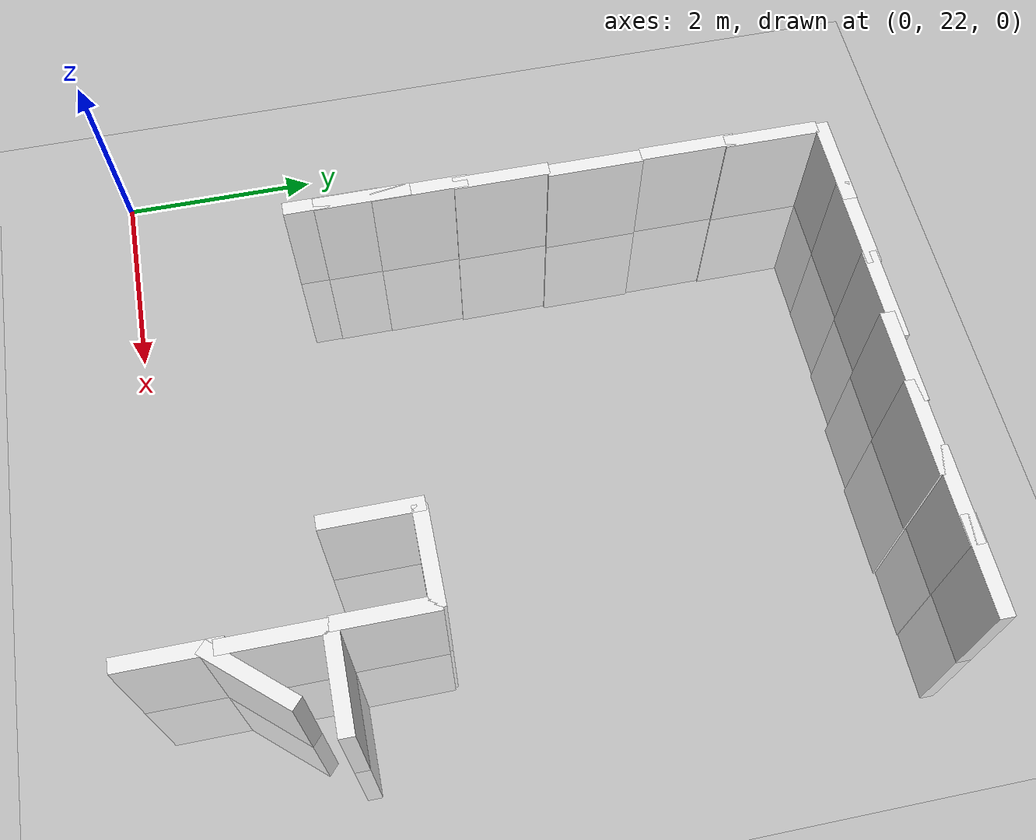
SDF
<sdf version="1.6">
 <world name="default">
  <model name="ground_plane">
   <static>1</static>
   <link name="link">
    <collision name="collision">
     <geometry><plane><normal>0 0 1</normal><size>100 100</size></plane></geometry>
     <surface><friction><ode><mu>100</mu><mu2>50</mu2></ode></friction></surface>
    </collision>
    <visual name="visual">
     <cast_shadows>0</cast_shadows>
     <geometry><plane><normal>0 0 1</normal><size>100 100</size></plane></geometry>
     <material>
      <script><uri>file://media/materials/scripts/gazebo.material</uri><name>Gazebo/Grey</name></script>
     </material>
    </visual>
   </link>
  </model>
  <model name="wall_left_07_clone_3_clone_1_clone_clone_1_clone_3">
   <link name="Wall_10">
    <inertial>
     <mass>1</mass>
     <inertia><ixx>1</ixx><ixy>0</ixy><ixz>0</ixz><iyy>1</iyy><iyz>0</iyz><izz>1</izz></inertia>
    </inertial>
    <visual name="Wall_10_Visual_0">
     <geometry><box><size>1 0.15 2.5</size></box></geometry>
     <material>
      <script>
       <uri>model://wall/materials/scripts</uri>
       <uri>model://wall/materials/textures</uri>
       <name>wall_white</name>
      </script>
      <shader type="pixel"><normal_map>__default__</normal_map></shader>
      <ambient>1 1 1 1</ambient>
      <diffuse>1 1 1 1</diffuse>
      <specular>0 0 0 1</specular>
      <emissive>0 0 0 1</emissive>
     </material>
     <meta><layer>0</layer></meta>
    </visual>
    <collision name="Wall_10_Collision_0">
     <geometry><box><size>1 0.15 2.5</size></box></geometry>
     <surface>
      <friction>
       <ode><mu>1</mu><mu2>1</mu2><fdir1>0 0 0</fdir1><slip1>0</slip1><slip2>0</slip2></ode>
       <torsional>
        <coefficient>1</coefficient>
        <patch_radius>0</patch_radius>
        <surface_radius>0</surface_radius>
        <use_patch_radius>1</use_patch_radius>
        <ode><slip>0</slip></ode>
       </torsional>
      </friction>
      <bounce><restitution_coefficient>0</restitution_coefficient><threshold>1e+06</threshold></bounce>
      <contact>
       <collide_without_contact>0</collide_without_contact>
       <collide_without_contact_bitmask>1</collide_without_contact_bitmask>
       <collide_bitmask>1</collide_bitmask>
       <ode>
        <soft_cfm>0</soft_cfm>
        <soft_erp>0.2</soft_erp>
        <kp>1e+13</kp>
        <kd>1</kd>
        <max_vel>0.01</max_vel>
        <min_depth>0</min_depth>
       </ode>
       <bullet>
        <split_impulse>1</split_impulse>
        <split_impulse_penetration_threshold>-0.01</split_impulse_penetration_threshold>
        <soft_cfm>0</soft_cfm>
        <soft_erp>0.2</soft_erp>
        <kp>1e+13</kp>
        <kd>1</kd>
       </bullet>
      </contact>
     </surface>
    </collision>
   </link>
   <static>1</static>
   <pose>5.69273 22.2182 0 0 -0 1.57</pose>
  </model>
  <model name="wall_left_07_clone_3_clone_1_clone_clone_1_clone_4">
   <link name="Wall_10">
    <inertial>
     <mass>1</mass>
     <inertia><ixx>1</ixx><ixy>0</ixy><ixz>0</ixz><iyy>1</iyy><iyz>0</iyz><izz>1</izz></inertia>
    </inertial>
    <visual name="Wall_10_Visual_0">
     <geometry><box><size>1 0.15 2.5</size></box></geometry>
     <material>
      <script>
       <uri>model://wall/materials/scripts</uri>
       <uri>model://wall/materials/textures</uri>
       <name>wall_white</name>
      </script>
      <shader type="pixel"><normal_map>__default__</normal_map></shader>
      <ambient>1 1 1 1</ambient>
      <diffuse>1 1 1 1</diffuse>
      <specular>0 0 0 1</specular>
      <emissive>0 0 0 1</emissive>
     </material>
     <meta><layer>0</layer></meta>
    </visual>
    <collision name="Wall_10_Collision_0">
     <geometry><box><size>1 0.15 2.5</size></box></geometry>
     <surface>
      <friction>
       <ode><mu>1</mu><mu2>1</mu2><fdir1>0 0 0</fdir1><slip1>0</slip1><slip2>0</slip2></ode>
       <torsional>
        <coefficient>1</coefficient>
        <patch_radius>0</patch_radius>
        <surface_radius>0</surface_radius>
        <use_patch_radius>1</use_patch_radius>
        <ode><slip>0</slip></ode>
       </torsional>
      </friction>
      <bounce><restitution_coefficient>0</restitution_coefficient><threshold>1e+06</threshold></bounce>
      <contact>
       <collide_without_contact>0</collide_without_contact>
       <collide_without_contact_bitmask>1</collide_without_contact_bitmask>
       <collide_bitmask>1</collide_bitmask>
       <ode>
        <soft_cfm>0</soft_cfm>
        <soft_erp>0.2</soft_erp>
        <kp>1e+13</kp>
        <kd>1</kd>
        <max_vel>0.01</max_vel>
        <min_depth>0</min_depth>
       </ode>
       <bullet>
        <split_impulse>1</split_impulse>
        <split_impulse_penetration_threshold>-0.01</split_impulse_penetration_threshold>
        <soft_cfm>0</soft_cfm>
        <soft_erp>0.2</soft_erp>
        <kp>1e+13</kp>
        <kd>1</kd>
       </bullet>
      </contact>
     </surface>
    </collision>
   </link>
   <static>1</static>
   <pose>5.70955 23.1139 0 0 -0 1.57</pose>
  </model>
  <model name="wall_left_07_clone_3_clone_1_clone_clone_1_clone_5">
   <link name="Wall_10">
    <inertial>
     <mass>1</mass>
     <inertia><ixx>1</ixx><ixy>0</ixy><ixz>0</ixz><iyy>1</iyy><iyz>0</iyz><izz>1</izz></inertia>
    </inertial>
    <visual name="Wall_10_Visual_0">
     <geometry><box><size>1 0.15 2.5</size></box></geometry>
     <material>
      <script>
       <uri>model://wall/materials/scripts</uri>
       <uri>model://wall/materials/textures</uri>
       <name>wall_white</name>
      </script>
      <shader type="pixel"><normal_map>__default__</normal_map></shader>
      <ambient>1 1 1 1</ambient>
      <diffuse>1 1 1 1</diffuse>
      <specular>0 0 0 1</specular>
      <emissive>0 0 0 1</emissive>
     </material>
     <meta><layer>0</layer></meta>
    </visual>
    <collision name="Wall_10_Collision_0">
     <geometry><box><size>1 0.15 2.5</size></box></geometry>
     <surface>
      <friction>
       <ode><mu>1</mu><mu2>1</mu2><fdir1>0 0 0</fdir1><slip1>0</slip1><slip2>0</slip2></ode>
       <torsional>
        <coefficient>1</coefficient>
        <patch_radius>0</patch_radius>
        <surface_radius>0</surface_radius>
        <use_patch_radius>1</use_patch_radius>
        <ode><slip>0</slip></ode>
       </torsional>
      </friction>
      <bounce><restitution_coefficient>0</restitution_coefficient><threshold>1e+06</threshold></bounce>
      <contact>
       <collide_without_contact>0</collide_without_contact>
       <collide_without_contact_bitmask>1</collide_without_contact_bitmask>
       <collide_bitmask>1</collide_bitmask>
       <ode>
        <soft_cfm>0</soft_cfm>
        <soft_erp>0.2</soft_erp>
        <kp>1e+13</kp>
        <kd>1</kd>
        <max_vel>0.01</max_vel>
        <min_depth>0</min_depth>
       </ode>
       <bullet>
        <split_impulse>1</split_impulse>
        <split_impulse_penetration_threshold>-0.01</split_impulse_penetration_threshold>
        <soft_cfm>0</soft_cfm>
        <soft_erp>0.2</soft_erp>
        <kp>1e+13</kp>
        <kd>1</kd>
       </bullet>
      </contact>
     </surface>
    </collision>
   </link>
   <static>1</static>
   <pose>5.69439 24.1029 0 0 -0 1.57</pose>
  </model>
  <model name="wall_right_13_clone_clone_9_clone_0_clone_6">
   <link name="Wall_10">
    <inertial>
     <mass>1</mass>
     <inertia><ixx>1</ixx><ixy>0</ixy><ixz>0</ixz><iyy>1</iyy><iyz>0</iyz><izz>1</izz></inertia>
    </inertial>
    <visual name="Wall_10_Visual_0">
     <geometry><box><size>1 0.15 2.5</size></box></geometry>
     <material>
      <script>
       <uri>model://wall/materials/scripts</uri>
       <uri>model://wall/materials/textures</uri>
       <name>wall_white</name>
      </script>
      <shader type="pixel"><normal_map>__default__</normal_map></shader>
      <ambient>1 1 1 1</ambient>
      <diffuse>1 1 1 1</diffuse>
      <specular>0 0 0 1</specular>
      <emissive>0 0 0 1</emissive>
     </material>
     <meta><layer>0</layer></meta>
    </visual>
    <collision name="Wall_10_Collision_0">
     <geometry><box><size>1 0.15 2.5</size></box></geometry>
     <surface>
      <friction>
       <ode><mu>1</mu><mu2>1</mu2><fdir1>0 0 0</fdir1><slip1>0</slip1><slip2>0</slip2></ode>
       <torsional>
        <coefficient>1</coefficient>
        <patch_radius>0</patch_radius>
        <surface_radius>0</surface_radius>
        <use_patch_radius>1</use_patch_radius>
        <ode><slip>0</slip></ode>
       </torsional>
      </friction>
      <bounce><restitution_coefficient>0</restitution_coefficient><threshold>1e+06</threshold></bounce>
      <contact>
       <collide_without_contact>0</collide_without_contact>
       <collide_without_contact_bitmask>1</collide_without_contact_bitmask>
       <collide_bitmask>1</collide_bitmask>
       <ode>
        <soft_cfm>0</soft_cfm>
        <soft_erp>0.2</soft_erp>
        <kp>1e+13</kp>
        <kd>1</kd>
        <max_vel>0.01</max_vel>
        <min_depth>0</min_depth>
       </ode>
       <bullet>
        <split_impulse>1</split_impulse>
        <split_impulse_penetration_threshold>-0.01</split_impulse_penetration_threshold>
        <soft_cfm>0</soft_cfm>
        <soft_erp>0.2</soft_erp>
        <kp>1e+13</kp>
        <kd>1</kd>
       </bullet>
      </contact>
     </surface>
    </collision>
   </link>
   <static>1</static>
   <pose>6.20061 23.6202 0 0 -0 0</pose>
  </model>
  <model name="wall_right_13_clone_clone_9_clone_0_clone_7">
   <link name="Wall_10">
    <inertial>
     <mass>1</mass>
     <inertia><ixx>1</ixx><ixy>0</ixy><ixz>0</ixz><iyy>1</iyy><iyz>0</iyz><izz>1</izz></inertia>
    </inertial>
    <visual name="Wall_10_Visual_0">
     <geometry><box><size>1 0.15 2.5</size></box></geometry>
     <material>
      <script>
       <uri>model://wall/materials/scripts</uri>
       <uri>model://wall/materials/textures</uri>
       <name>wall_white</name>
      </script>
      <shader type="pixel"><normal_map>__default__</normal_map></shader>
      <ambient>1 1 1 1</ambient>
      <diffuse>1 1 1 1</diffuse>
      <specular>0 0 0 1</specular>
      <emissive>0 0 0 1</emissive>
     </material>
     <meta><layer>0</layer></meta>
    </visual>
    <collision name="Wall_10_Collision_0">
     <geometry><box><size>1 0.15 2.5</size></box></geometry>
     <surface>
      <friction>
       <ode><mu>1</mu><mu2>1</mu2><fdir1>0 0 0</fdir1><slip1>0</slip1><slip2>0</slip2></ode>
       <torsional>
        <coefficient>1</coefficient>
        <patch_radius>0</patch_radius>
        <surface_radius>0</surface_radius>
        <use_patch_radius>1</use_patch_radius>
        <ode><slip>0</slip></ode>
       </torsional>
      </friction>
      <bounce><restitution_coefficient>0</restitution_coefficient><threshold>1e+06</threshold></bounce>
      <contact>
       <collide_without_contact>0</collide_without_contact>
       <collide_without_contact_bitmask>1</collide_without_contact_bitmask>
       <collide_bitmask>1</collide_bitmask>
       <ode>
        <soft_cfm>0</soft_cfm>
        <soft_erp>0.2</soft_erp>
        <kp>1e+13</kp>
        <kd>1</kd>
        <max_vel>0.01</max_vel>
        <min_depth>0</min_depth>
       </ode>
       <bullet>
        <split_impulse>1</split_impulse>
        <split_impulse_penetration_threshold>-0.01</split_impulse_penetration_threshold>
        <soft_cfm>0</soft_cfm>
        <soft_erp>0.2</soft_erp>
        <kp>1e+13</kp>
        <kd>1</kd>
       </bullet>
      </contact>
     </surface>
    </collision>
   </link>
   <static>1</static>
   <pose>6.31218 29.3512 0 0 -0 0</pose>
  </model>
  <model name="wall_right_13_clone_clone_9_clone_0_clone_8">
   <link name="Wall_10">
    <inertial>
     <mass>1</mass>
     <inertia><ixx>1</ixx><ixy>0</ixy><ixz>0</ixz><iyy>1</iyy><iyz>0</iyz><izz>1</izz></inertia>
    </inertial>
    <visual name="Wall_10_Visual_0">
     <geometry><box><size>1 0.15 2.5</size></box></geometry>
     <material>
      <script>
       <uri>model://wall/materials/scripts</uri>
       <uri>model://wall/materials/textures</uri>
       <name>wall_white</name>
      </script>
      <shader type="pixel"><normal_map>__default__</normal_map></shader>
      <ambient>1 1 1 1</ambient>
      <diffuse>1 1 1 1</diffuse>
      <specular>0 0 0 1</specular>
      <emissive>0 0 0 1</emissive>
     </material>
     <meta><layer>0</layer></meta>
    </visual>
    <collision name="Wall_10_Collision_0">
     <geometry><box><size>1 0.15 2.5</size></box></geometry>
     <surface>
      <friction>
       <ode><mu>1</mu><mu2>1</mu2><fdir1>0 0 0</fdir1><slip1>0</slip1><slip2>0</slip2></ode>
       <torsional>
        <coefficient>1</coefficient>
        <patch_radius>0</patch_radius>
        <surface_radius>0</surface_radius>
        <use_patch_radius>1</use_patch_radius>
        <ode><slip>0</slip></ode>
       </torsional>
      </friction>
      <bounce><restitution_coefficient>0</restitution_coefficient><threshold>1e+06</threshold></bounce>
      <contact>
       <collide_without_contact>0</collide_without_contact>
       <collide_without_contact_bitmask>1</collide_without_contact_bitmask>
       <collide_bitmask>1</collide_bitmask>
       <ode>
        <soft_cfm>0</soft_cfm>
        <soft_erp>0.2</soft_erp>
        <kp>1e+13</kp>
        <kd>1</kd>
        <max_vel>0.01</max_vel>
        <min_depth>0</min_depth>
       </ode>
       <bullet>
        <split_impulse>1</split_impulse>
        <split_impulse_penetration_threshold>-0.01</split_impulse_penetration_threshold>
        <soft_cfm>0</soft_cfm>
        <soft_erp>0.2</soft_erp>
        <kp>1e+13</kp>
        <kd>1</kd>
       </bullet>
      </contact>
     </surface>
    </collision>
   </link>
   <static>1</static>
   <pose>5.61715 29.3417 0 0 -0 0</pose>
  </model>
  <model name="wall_right_13_clone_clone_9_clone_0_clone_9">
   <link name="Wall_10">
    <inertial>
     <mass>1</mass>
     <inertia><ixx>1</ixx><ixy>0</ixy><ixz>0</ixz><iyy>1</iyy><iyz>0</iyz><izz>1</izz></inertia>
    </inertial>
    <visual name="Wall_10_Visual_0">
     <geometry><box><size>1 0.15 2.5</size></box></geometry>
     <material>
      <script>
       <uri>model://wall/materials/scripts</uri>
       <uri>model://wall/materials/textures</uri>
       <name>wall_white</name>
      </script>
      <shader type="pixel"><normal_map>__default__</normal_map></shader>
      <ambient>1 1 1 1</ambient>
      <diffuse>1 1 1 1</diffuse>
      <specular>0 0 0 1</specular>
      <emissive>0 0 0 1</emissive>
     </material>
     <meta><layer>0</layer></meta>
    </visual>
    <collision name="Wall_10_Collision_0">
     <geometry><box><size>1 0.15 2.5</size></box></geometry>
     <surface>
      <friction>
       <ode><mu>1</mu><mu2>1</mu2><fdir1>0 0 0</fdir1><slip1>0</slip1><slip2>0</slip2></ode>
       <torsional>
        <coefficient>1</coefficient>
        <patch_radius>0</patch_radius>
        <surface_radius>0</surface_radius>
        <use_patch_radius>1</use_patch_radius>
        <ode><slip>0</slip></ode>
       </torsional>
      </friction>
      <bounce><restitution_coefficient>0</restitution_coefficient><threshold>1e+06</threshold></bounce>
      <contact>
       <collide_without_contact>0</collide_without_contact>
       <collide_without_contact_bitmask>1</collide_without_contact_bitmask>
       <collide_bitmask>1</collide_bitmask>
       <ode>
        <soft_cfm>0</soft_cfm>
        <soft_erp>0.2</soft_erp>
        <kp>1e+13</kp>
        <kd>1</kd>
        <max_vel>0.01</max_vel>
        <min_depth>0</min_depth>
       </ode>
       <bullet>
        <split_impulse>1</split_impulse>
        <split_impulse_penetration_threshold>-0.01</split_impulse_penetration_threshold>
        <soft_cfm>0</soft_cfm>
        <soft_erp>0.2</soft_erp>
        <kp>1e+13</kp>
        <kd>1</kd>
       </bullet>
      </contact>
     </surface>
    </collision>
   </link>
   <static>1</static>
   <pose>4.90644 29.3161 0 0 -0 0</pose>
  </model>
  <model name="wall_right_13_clone_clone_9_clone_0_clone_10">
   <link name="Wall_10">
    <inertial>
     <mass>1</mass>
     <inertia><ixx>1</ixx><ixy>0</ixy><ixz>0</ixz><iyy>1</iyy><iyz>0</iyz><izz>1</izz></inertia>
    </inertial>
    <visual name="Wall_10_Visual_0">
     <geometry><box><size>1 0.15 2.5</size></box></geometry>
     <material>
      <script>
       <uri>model://wall/materials/scripts</uri>
       <uri>model://wall/materials/textures</uri>
       <name>wall_white</name>
      </script>
      <shader type="pixel"><normal_map>__default__</normal_map></shader>
      <ambient>1 1 1 1</ambient>
      <diffuse>1 1 1 1</diffuse>
      <specular>0 0 0 1</specular>
      <emissive>0 0 0 1</emissive>
     </material>
     <meta><layer>0</layer></meta>
    </visual>
    <collision name="Wall_10_Collision_0">
     <geometry><box><size>1 0.15 2.5</size></box></geometry>
     <surface>
      <friction>
       <ode><mu>1</mu><mu2>1</mu2><fdir1>0 0 0</fdir1><slip1>0</slip1><slip2>0</slip2></ode>
       <torsional>
        <coefficient>1</coefficient>
        <patch_radius>0</patch_radius>
        <surface_radius>0</surface_radius>
        <use_patch_radius>1</use_patch_radius>
        <ode><slip>0</slip></ode>
       </torsional>
      </friction>
      <bounce><restitution_coefficient>0</restitution_coefficient><threshold>1e+06</threshold></bounce>
      <contact>
       <collide_without_contact>0</collide_without_contact>
       <collide_without_contact_bitmask>1</collide_without_contact_bitmask>
       <collide_bitmask>1</collide_bitmask>
       <ode>
        <soft_cfm>0</soft_cfm>
        <soft_erp>0.2</soft_erp>
        <kp>1e+13</kp>
        <kd>1</kd>
        <max_vel>0.01</max_vel>
        <min_depth>0</min_depth>
       </ode>
       <bullet>
        <split_impulse>1</split_impulse>
        <split_impulse_penetration_threshold>-0.01</split_impulse_penetration_threshold>
        <soft_cfm>0</soft_cfm>
        <soft_erp>0.2</soft_erp>
        <kp>1e+13</kp>
        <kd>1</kd>
       </bullet>
      </contact>
     </surface>
    </collision>
   </link>
   <static>1</static>
   <pose>4.14812 29.3365 0 0 -0 0</pose>
  </model>
  <model name="wall_right_13_clone_clone_9_clone_0_clone_11">
   <link name="Wall_10">
    <inertial>
     <mass>1</mass>
     <inertia><ixx>1</ixx><ixy>0</ixy><ixz>0</ixz><iyy>1</iyy><iyz>0</iyz><izz>1</izz></inertia>
    </inertial>
    <visual name="Wall_10_Visual_0">
     <geometry><box><size>1 0.15 2.5</size></box></geometry>
     <material>
      <script>
       <uri>model://wall/materials/scripts</uri>
       <uri>model://wall/materials/textures</uri>
       <name>wall_white</name>
      </script>
      <shader type="pixel"><normal_map>__default__</normal_map></shader>
      <ambient>1 1 1 1</ambient>
      <diffuse>1 1 1 1</diffuse>
      <specular>0 0 0 1</specular>
      <emissive>0 0 0 1</emissive>
     </material>
     <meta><layer>0</layer></meta>
    </visual>
    <collision name="Wall_10_Collision_0">
     <geometry><box><size>1 0.15 2.5</size></box></geometry>
     <surface>
      <friction>
       <ode><mu>1</mu><mu2>1</mu2><fdir1>0 0 0</fdir1><slip1>0</slip1><slip2>0</slip2></ode>
       <torsional>
        <coefficient>1</coefficient>
        <patch_radius>0</patch_radius>
        <surface_radius>0</surface_radius>
        <use_patch_radius>1</use_patch_radius>
        <ode><slip>0</slip></ode>
       </torsional>
      </friction>
      <bounce><restitution_coefficient>0</restitution_coefficient><threshold>1e+06</threshold></bounce>
      <contact>
       <collide_without_contact>0</collide_without_contact>
       <collide_without_contact_bitmask>1</collide_without_contact_bitmask>
       <collide_bitmask>1</collide_bitmask>
       <ode>
        <soft_cfm>0</soft_cfm>
        <soft_erp>0.2</soft_erp>
        <kp>1e+13</kp>
        <kd>1</kd>
        <max_vel>0.01</max_vel>
        <min_depth>0</min_depth>
       </ode>
       <bullet>
        <split_impulse>1</split_impulse>
        <split_impulse_penetration_threshold>-0.01</split_impulse_penetration_threshold>
        <soft_cfm>0</soft_cfm>
        <soft_erp>0.2</soft_erp>
        <kp>1e+13</kp>
        <kd>1</kd>
       </bullet>
      </contact>
     </surface>
    </collision>
   </link>
   <static>1</static>
   <pose>3.43533 29.3884 0 0 -0 0</pose>
  </model>
  <model name="wall_right_13_clone_clone_9_clone_0_clone_12">
   <link name="Wall_10">
    <inertial>
     <mass>1</mass>
     <inertia><ixx>1</ixx><ixy>0</ixy><ixz>0</ixz><iyy>1</iyy><iyz>0</iyz><izz>1</izz></inertia>
    </inertial>
    <visual name="Wall_10_Visual_0">
     <geometry><box><size>1 0.15 2.5</size></box></geometry>
     <material>
      <script>
       <uri>model://wall/materials/scripts</uri>
       <uri>model://wall/materials/textures</uri>
       <name>wall_white</name>
      </script>
      <shader type="pixel"><normal_map>__default__</normal_map></shader>
      <ambient>1 1 1 1</ambient>
      <diffuse>1 1 1 1</diffuse>
      <specular>0 0 0 1</specular>
      <emissive>0 0 0 1</emissive>
     </material>
     <meta><layer>0</layer></meta>
    </visual>
    <collision name="Wall_10_Collision_0">
     <geometry><box><size>1 0.15 2.5</size></box></geometry>
     <surface>
      <friction>
       <ode><mu>1</mu><mu2>1</mu2><fdir1>0 0 0</fdir1><slip1>0</slip1><slip2>0</slip2></ode>
       <torsional>
        <coefficient>1</coefficient>
        <patch_radius>0</patch_radius>
        <surface_radius>0</surface_radius>
        <use_patch_radius>1</use_patch_radius>
        <ode><slip>0</slip></ode>
       </torsional>
      </friction>
      <bounce><restitution_coefficient>0</restitution_coefficient><threshold>1e+06</threshold></bounce>
      <contact>
       <collide_without_contact>0</collide_without_contact>
       <collide_without_contact_bitmask>1</collide_without_contact_bitmask>
       <collide_bitmask>1</collide_bitmask>
       <ode>
        <soft_cfm>0</soft_cfm>
        <soft_erp>0.2</soft_erp>
        <kp>1e+13</kp>
        <kd>1</kd>
        <max_vel>0.01</max_vel>
        <min_depth>0</min_depth>
       </ode>
       <bullet>
        <split_impulse>1</split_impulse>
        <split_impulse_penetration_threshold>-0.01</split_impulse_penetration_threshold>
        <soft_cfm>0</soft_cfm>
        <soft_erp>0.2</soft_erp>
        <kp>1e+13</kp>
        <kd>1</kd>
       </bullet>
      </contact>
     </surface>
    </collision>
   </link>
   <static>1</static>
   <pose>2.56771 29.4038 0 0 -0 0</pose>
  </model>
  <model name="wall_right_13_clone_clone_9_clone_0_clone_13">
   <link name="Wall_10">
    <inertial>
     <mass>1</mass>
     <inertia><ixx>1</ixx><ixy>0</ixy><ixz>0</ixz><iyy>1</iyy><iyz>0</iyz><izz>1</izz></inertia>
    </inertial>
    <visual name="Wall_10_Visual_0">
     <geometry><box><size>1 0.15 2.5</size></box></geometry>
     <material>
      <script>
       <uri>model://wall/materials/scripts</uri>
       <uri>model://wall/materials/textures</uri>
       <name>wall_white</name>
      </script>
      <shader type="pixel"><normal_map>__default__</normal_map></shader>
      <ambient>1 1 1 1</ambient>
      <diffuse>1 1 1 1</diffuse>
      <specular>0 0 0 1</specular>
      <emissive>0 0 0 1</emissive>
     </material>
     <meta><layer>0</layer></meta>
    </visual>
    <collision name="Wall_10_Collision_0">
     <geometry><box><size>1 0.15 2.5</size></box></geometry>
     <surface>
      <friction>
       <ode><mu>1</mu><mu2>1</mu2><fdir1>0 0 0</fdir1><slip1>0</slip1><slip2>0</slip2></ode>
       <torsional>
        <coefficient>1</coefficient>
        <patch_radius>0</patch_radius>
        <surface_radius>0</surface_radius>
        <use_patch_radius>1</use_patch_radius>
        <ode><slip>0</slip></ode>
       </torsional>
      </friction>
      <bounce><restitution_coefficient>0</restitution_coefficient><threshold>1e+06</threshold></bounce>
      <contact>
       <collide_without_contact>0</collide_without_contact>
       <collide_without_contact_bitmask>1</collide_without_contact_bitmask>
       <collide_bitmask>1</collide_bitmask>
       <ode>
        <soft_cfm>0</soft_cfm>
        <soft_erp>0.2</soft_erp>
        <kp>1e+13</kp>
        <kd>1</kd>
        <max_vel>0.01</max_vel>
        <min_depth>0</min_depth>
       </ode>
       <bullet>
        <split_impulse>1</split_impulse>
        <split_impulse_penetration_threshold>-0.01</split_impulse_penetration_threshold>
        <soft_cfm>0</soft_cfm>
        <soft_erp>0.2</soft_erp>
        <kp>1e+13</kp>
        <kd>1</kd>
       </bullet>
      </contact>
     </surface>
    </collision>
   </link>
   <static>1</static>
   <pose>5.24049 24.5592 0 0 -0 0</pose>
  </model>
  <model name="wall_right_13_clone_clone_9_clone_0_clone_14">
   <link name="Wall_10">
    <inertial>
     <mass>1</mass>
     <inertia><ixx>1</ixx><ixy>0</ixy><ixz>0</ixz><iyy>1</iyy><iyz>0</iyz><izz>1</izz></inertia>
    </inertial>
    <visual name="Wall_10_Visual_0">
     <geometry><box><size>1 0.15 2.5</size></box></geometry>
     <material>
      <script>
       <uri>model://wall/materials/scripts</uri>
       <uri>model://wall/materials/textures</uri>
       <name>wall_white</name>
      </script>
      <shader type="pixel"><normal_map>__default__</normal_map></shader>
      <ambient>1 1 1 1</ambient>
      <diffuse>1 1 1 1</diffuse>
      <specular>0 0 0 1</specular>
      <emissive>0 0 0 1</emissive>
     </material>
     <meta><layer>0</layer></meta>
    </visual>
    <collision name="Wall_10_Collision_0">
     <geometry><box><size>1 0.15 2.5</size></box></geometry>
     <surface>
      <friction>
       <ode><mu>1</mu><mu2>1</mu2><fdir1>0 0 0</fdir1><slip1>0</slip1><slip2>0</slip2></ode>
       <torsional>
        <coefficient>1</coefficient>
        <patch_radius>0</patch_radius>
        <surface_radius>0</surface_radius>
        <use_patch_radius>1</use_patch_radius>
        <ode><slip>0</slip></ode>
       </torsional>
      </friction>
      <bounce><restitution_coefficient>0</restitution_coefficient><threshold>1e+06</threshold></bounce>
      <contact>
       <collide_without_contact>0</collide_without_contact>
       <collide_without_contact_bitmask>1</collide_without_contact_bitmask>
       <collide_bitmask>1</collide_bitmask>
       <ode>
        <soft_cfm>0</soft_cfm>
        <soft_erp>0.2</soft_erp>
        <kp>1e+13</kp>
        <kd>1</kd>
        <max_vel>0.01</max_vel>
        <min_depth>0</min_depth>
       </ode>
       <bullet>
        <split_impulse>1</split_impulse>
        <split_impulse_penetration_threshold>-0.01</split_impulse_penetration_threshold>
        <soft_cfm>0</soft_cfm>
        <soft_erp>0.2</soft_erp>
        <kp>1e+13</kp>
        <kd>1</kd>
       </bullet>
      </contact>
     </surface>
    </collision>
   </link>
   <static>1</static>
   <pose>1.77808 29.4083 0 0 -0 0</pose>
  </model>
  <model name="wall_left_07_clone_3_clone_1_clone_clone_1_clone_4_clone">
   <link name="Wall_10">
    <inertial>
     <mass>1</mass>
     <inertia><ixx>1</ixx><ixy>0</ixy><ixz>0</ixz><iyy>1</iyy><iyz>0</iyz><izz>1</izz></inertia>
    </inertial>
    <visual name="Wall_10_Visual_0">
     <geometry><box><size>1 0.15 2.5</size></box></geometry>
     <material>
      <script>
       <uri>model://wall/materials/scripts</uri>
       <uri>model://wall/materials/textures</uri>
       <name>wall_white</name>
      </script>
      <shader type="pixel"><normal_map>__default__</normal_map></shader>
      <ambient>1 1 1 1</ambient>
      <diffuse>1 1 1 1</diffuse>
      <specular>0 0 0 1</specular>
      <emissive>0 0 0 1</emissive>
     </material>
     <meta><layer>0</layer></meta>
    </visual>
    <collision name="Wall_10_Collision_0">
     <geometry><box><size>1 0.15 2.5</size></box></geometry>
     <surface>
      <friction>
       <ode><mu>1</mu><mu2>1</mu2><fdir1>0 0 0</fdir1><slip1>0</slip1><slip2>0</slip2></ode>
       <torsional>
        <coefficient>1</coefficient>
        <patch_radius>0</patch_radius>
        <surface_radius>0</surface_radius>
        <use_patch_radius>1</use_patch_radius>
        <ode><slip>0</slip></ode>
       </torsional>
      </friction>
      <bounce><restitution_coefficient>0</restitution_coefficient><threshold>1e+06</threshold></bounce>
      <contact>
       <collide_without_contact>0</collide_without_contact>
       <collide_without_contact_bitmask>1</collide_without_contact_bitmask>
       <collide_bitmask>1</collide_bitmask>
       <ode>
        <soft_cfm>0</soft_cfm>
        <soft_erp>0.2</soft_erp>
        <kp>1e+13</kp>
        <kd>1</kd>
        <max_vel>0.01</max_vel>
        <min_depth>0</min_depth>
       </ode>
       <bullet>
        <split_impulse>1</split_impulse>
        <split_impulse_penetration_threshold>-0.01</split_impulse_penetration_threshold>
        <soft_cfm>0</soft_cfm>
        <soft_erp>0.2</soft_erp>
        <kp>1e+13</kp>
        <kd>1</kd>
       </bullet>
      </contact>
     </surface>
    </collision>
   </link>
   <static>1</static>
   <pose>4.73757 24.1185 0 0 -0 1.57</pose>
  </model>
  <model name="wall_left_07_clone_3_clone_1_clone_clone_1_clone_4_clone_0">
   <link name="Wall_10">
    <inertial>
     <mass>1</mass>
     <inertia><ixx>1</ixx><ixy>0</ixy><ixz>0</ixz><iyy>1</iyy><iyz>0</iyz><izz>1</izz></inertia>
    </inertial>
    <visual name="Wall_10_Visual_0">
     <geometry><box><size>1 0.15 2.5</size></box></geometry>
     <material>
      <script>
       <uri>model://wall/materials/scripts</uri>
       <uri>model://wall/materials/textures</uri>
       <name>wall_white</name>
      </script>
      <shader type="pixel"><normal_map>__default__</normal_map></shader>
      <ambient>1 1 1 1</ambient>
      <diffuse>1 1 1 1</diffuse>
      <specular>0 0 0 1</specular>
      <emissive>0 0 0 1</emissive>
     </material>
     <meta><layer>0</layer></meta>
    </visual>
    <collision name="Wall_10_Collision_0">
     <geometry><box><size>1 0.15 2.5</size></box></geometry>
     <surface>
      <friction>
       <ode><mu>1</mu><mu2>1</mu2><fdir1>0 0 0</fdir1><slip1>0</slip1><slip2>0</slip2></ode>
       <torsional>
        <coefficient>1</coefficient>
        <patch_radius>0</patch_radius>
        <surface_radius>0</surface_radius>
        <use_patch_radius>1</use_patch_radius>
        <ode><slip>0</slip></ode>
       </torsional>
      </friction>
      <bounce><restitution_coefficient>0</restitution_coefficient><threshold>1e+06</threshold></bounce>
      <contact>
       <collide_without_contact>0</collide_without_contact>
       <collide_without_contact_bitmask>1</collide_without_contact_bitmask>
       <collide_bitmask>1</collide_bitmask>
       <ode>
        <soft_cfm>0</soft_cfm>
        <soft_erp>0.2</soft_erp>
        <kp>1e+13</kp>
        <kd>1</kd>
        <max_vel>0.01</max_vel>
        <min_depth>0</min_depth>
       </ode>
       <bullet>
        <split_impulse>1</split_impulse>
        <split_impulse_penetration_threshold>-0.01</split_impulse_penetration_threshold>
        <soft_cfm>0</soft_cfm>
        <soft_erp>0.2</soft_erp>
        <kp>1e+13</kp>
        <kd>1</kd>
       </bullet>
      </contact>
     </surface>
    </collision>
   </link>
   <static>1</static>
   <pose>1.32189 28.8605 0 0 -0 1.57</pose>
  </model>
  <model name="wall_left_07_clone_3_clone_1_clone_clone_1_clone_4_clone_1">
   <link name="Wall_10">
    <inertial>
     <mass>1</mass>
     <inertia><ixx>1</ixx><ixy>0</ixy><ixz>0</ixz><iyy>1</iyy><iyz>0</iyz><izz>1</izz></inertia>
    </inertial>
    <visual name="Wall_10_Visual_0">
     <geometry><box><size>1 0.15 2.5</size></box></geometry>
     <material>
      <script>
       <uri>model://wall/materials/scripts</uri>
       <uri>model://wall/materials/textures</uri>
       <name>wall_white</name>
      </script>
      <shader type="pixel"><normal_map>__default__</normal_map></shader>
      <ambient>1 1 1 1</ambient>
      <diffuse>1 1 1 1</diffuse>
      <specular>0 0 0 1</specular>
      <emissive>0 0 0 1</emissive>
     </material>
     <meta><layer>0</layer></meta>
    </visual>
    <collision name="Wall_10_Collision_0">
     <geometry><box><size>1 0.15 2.5</size></box></geometry>
     <surface>
      <friction>
       <ode><mu>1</mu><mu2>1</mu2><fdir1>0 0 0</fdir1><slip1>0</slip1><slip2>0</slip2></ode>
       <torsional>
        <coefficient>1</coefficient>
        <patch_radius>0</patch_radius>
        <surface_radius>0</surface_radius>
        <use_patch_radius>1</use_patch_radius>
        <ode><slip>0</slip></ode>
       </torsional>
      </friction>
      <bounce><restitution_coefficient>0</restitution_coefficient><threshold>1e+06</threshold></bounce>
      <contact>
       <collide_without_contact>0</collide_without_contact>
       <collide_without_contact_bitmask>1</collide_without_contact_bitmask>
       <collide_bitmask>1</collide_bitmask>
       <ode>
        <soft_cfm>0</soft_cfm>
        <soft_erp>0.2</soft_erp>
        <kp>1e+13</kp>
        <kd>1</kd>
        <max_vel>0.01</max_vel>
        <min_depth>0</min_depth>
       </ode>
       <bullet>
        <split_impulse>1</split_impulse>
        <split_impulse_penetration_threshold>-0.01</split_impulse_penetration_threshold>
        <soft_cfm>0</soft_cfm>
        <soft_erp>0.2</soft_erp>
        <kp>1e+13</kp>
        <kd>1</kd>
       </bullet>
      </contact>
     </surface>
    </collision>
   </link>
   <static>1</static>
   <pose>1.3048 27.9621 0 0 -0 1.57</pose>
  </model>
  <model name="wall_left_07_clone_3_clone_1_clone_clone_1_clone_4_clone_2">
   <link name="Wall_10">
    <inertial>
     <mass>1</mass>
     <inertia><ixx>1</ixx><ixy>0</ixy><ixz>0</ixz><iyy>1</iyy><iyz>0</iyz><izz>1</izz></inertia>
    </inertial>
    <visual name="Wall_10_Visual_0">
     <geometry><box><size>1 0.15 2.5</size></box></geometry>
     <material>
      <script>
       <uri>model://wall/materials/scripts</uri>
       <uri>model://wall/materials/textures</uri>
       <name>wall_white</name>
      </script>
      <shader type="pixel"><normal_map>__default__</normal_map></shader>
      <ambient>1 1 1 1</ambient>
      <diffuse>1 1 1 1</diffuse>
      <specular>0 0 0 1</specular>
      <emissive>0 0 0 1</emissive>
     </material>
     <meta><layer>0</layer></meta>
    </visual>
    <collision name="Wall_10_Collision_0">
     <geometry><box><size>1 0.15 2.5</size></box></geometry>
     <surface>
      <friction>
       <ode><mu>1</mu><mu2>1</mu2><fdir1>0 0 0</fdir1><slip1>0</slip1><slip2>0</slip2></ode>
       <torsional>
        <coefficient>1</coefficient>
        <patch_radius>0</patch_radius>
        <surface_radius>0</surface_radius>
        <use_patch_radius>1</use_patch_radius>
        <ode><slip>0</slip></ode>
       </torsional>
      </friction>
      <bounce><restitution_coefficient>0</restitution_coefficient><threshold>1e+06</threshold></bounce>
      <contact>
       <collide_without_contact>0</collide_without_contact>
       <collide_without_contact_bitmask>1</collide_without_contact_bitmask>
       <collide_bitmask>1</collide_bitmask>
       <ode>
        <soft_cfm>0</soft_cfm>
        <soft_erp>0.2</soft_erp>
        <kp>1e+13</kp>
        <kd>1</kd>
        <max_vel>0.01</max_vel>
        <min_depth>0</min_depth>
       </ode>
       <bullet>
        <split_impulse>1</split_impulse>
        <split_impulse_penetration_threshold>-0.01</split_impulse_penetration_threshold>
        <soft_cfm>0</soft_cfm>
        <soft_erp>0.2</soft_erp>
        <kp>1e+13</kp>
        <kd>1</kd>
       </bullet>
      </contact>
     </surface>
    </collision>
   </link>
   <static>1</static>
   <pose>1.32038 26.9721 0 0 -0 1.57</pose>
  </model>
  <model name="wall_left_07_clone_3_clone_1_clone_clone_1_clone_4_clone_3">
   <link name="Wall_10">
    <inertial>
     <mass>1</mass>
     <inertia><ixx>1</ixx><ixy>0</ixy><ixz>0</ixz><iyy>1</iyy><iyz>0</iyz><izz>1</izz></inertia>
    </inertial>
    <visual name="Wall_10_Visual_0">
     <geometry><box><size>1 0.15 2.5</size></box></geometry>
     <material>
      <script>
       <uri>model://wall/materials/scripts</uri>
       <uri>model://wall/materials/textures</uri>
       <name>wall_white</name>
      </script>
      <shader type="pixel"><normal_map>__default__</normal_map></shader>
      <ambient>1 1 1 1</ambient>
      <diffuse>1 1 1 1</diffuse>
      <specular>0 0 0 1</specular>
      <emissive>0 0 0 1</emissive>
     </material>
     <meta><layer>0</layer></meta>
    </visual>
    <collision name="Wall_10_Collision_0">
     <geometry><box><size>1 0.15 2.5</size></box></geometry>
     <surface>
      <friction>
       <ode><mu>1</mu><mu2>1</mu2><fdir1>0 0 0</fdir1><slip1>0</slip1><slip2>0</slip2></ode>
       <torsional>
        <coefficient>1</coefficient>
        <patch_radius>0</patch_radius>
        <surface_radius>0</surface_radius>
        <use_patch_radius>1</use_patch_radius>
        <ode><slip>0</slip></ode>
       </torsional>
      </friction>
      <bounce><restitution_coefficient>0</restitution_coefficient><threshold>1e+06</threshold></bounce>
      <contact>
       <collide_without_contact>0</collide_without_contact>
       <collide_without_contact_bitmask>1</collide_without_contact_bitmask>
       <collide_bitmask>1</collide_bitmask>
       <ode>
        <soft_cfm>0</soft_cfm>
        <soft_erp>0.2</soft_erp>
        <kp>1e+13</kp>
        <kd>1</kd>
        <max_vel>0.01</max_vel>
        <min_depth>0</min_depth>
       </ode>
       <bullet>
        <split_impulse>1</split_impulse>
        <split_impulse_penetration_threshold>-0.01</split_impulse_penetration_threshold>
        <soft_cfm>0</soft_cfm>
        <soft_erp>0.2</soft_erp>
        <kp>1e+13</kp>
        <kd>1</kd>
       </bullet>
      </contact>
     </surface>
    </collision>
   </link>
   <static>1</static>
   <pose>1.28912 25.9968 0 0 -0 1.57</pose>
  </model>
  <model name="wall_left_07_clone_3_clone_1_clone_clone_1_clone_4_clone_4">
   <link name="Wall_10">
    <inertial>
     <mass>1</mass>
     <inertia><ixx>1</ixx><ixy>0</ixy><ixz>0</ixz><iyy>1</iyy><iyz>0</iyz><izz>1</izz></inertia>
    </inertial>
    <visual name="Wall_10_Visual_0">
     <geometry><box><size>1 0.15 2.5</size></box></geometry>
     <material>
      <script>
       <uri>model://wall/materials/scripts</uri>
       <uri>model://wall/materials/textures</uri>
       <name>wall_white</name>
      </script>
      <shader type="pixel"><normal_map>__default__</normal_map></shader>
      <ambient>1 1 1 1</ambient>
      <diffuse>1 1 1 1</diffuse>
      <specular>0 0 0 1</specular>
      <emissive>0 0 0 1</emissive>
     </material>
     <meta><layer>0</layer></meta>
    </visual>
    <collision name="Wall_10_Collision_0">
     <geometry><box><size>1 0.15 2.5</size></box></geometry>
     <surface>
      <friction>
       <ode><mu>1</mu><mu2>1</mu2><fdir1>0 0 0</fdir1><slip1>0</slip1><slip2>0</slip2></ode>
       <torsional>
        <coefficient>1</coefficient>
        <patch_radius>0</patch_radius>
        <surface_radius>0</surface_radius>
        <use_patch_radius>1</use_patch_radius>
        <ode><slip>0</slip></ode>
       </torsional>
      </friction>
      <bounce><restitution_coefficient>0</restitution_coefficient><threshold>1e+06</threshold></bounce>
      <contact>
       <collide_without_contact>0</collide_without_contact>
       <collide_without_contact_bitmask>1</collide_without_contact_bitmask>
       <collide_bitmask>1</collide_bitmask>
       <ode>
        <soft_cfm>0</soft_cfm>
        <soft_erp>0.2</soft_erp>
        <kp>1e+13</kp>
        <kd>1</kd>
        <max_vel>0.01</max_vel>
        <min_depth>0</min_depth>
       </ode>
       <bullet>
        <split_impulse>1</split_impulse>
        <split_impulse_penetration_threshold>-0.01</split_impulse_penetration_threshold>
        <soft_cfm>0</soft_cfm>
        <soft_erp>0.2</soft_erp>
        <kp>1e+13</kp>
        <kd>1</kd>
       </bullet>
      </contact>
     </surface>
    </collision>
   </link>
   <static>1</static>
   <pose>1.27129 25.1454 0 0 -0 1.57</pose>
  </model>
  <model name="wall_left_07_clone_3_clone_1_clone_clone_1_clone_4_clone_5">
   <link name="Wall_10">
    <inertial>
     <mass>1</mass>
     <inertia><ixx>1</ixx><ixy>0</ixy><ixz>0</ixz><iyy>1</iyy><iyz>0</iyz><izz>1</izz></inertia>
    </inertial>
    <visual name="Wall_10_Visual_0">
     <geometry><box><size>1 0.15 2.5</size></box></geometry>
     <material>
      <script>
       <uri>model://wall/materials/scripts</uri>
       <uri>model://wall/materials/textures</uri>
       <name>wall_white</name>
      </script>
      <shader type="pixel"><normal_map>__default__</normal_map></shader>
      <ambient>1 1 1 1</ambient>
      <diffuse>1 1 1 1</diffuse>
      <specular>0 0 0 1</specular>
      <emissive>0 0 0 1</emissive>
     </material>
     <meta><layer>0</layer></meta>
    </visual>
    <collision name="Wall_10_Collision_0">
     <geometry><box><size>1 0.15 2.5</size></box></geometry>
     <surface>
      <friction>
       <ode><mu>1</mu><mu2>1</mu2><fdir1>0 0 0</fdir1><slip1>0</slip1><slip2>0</slip2></ode>
       <torsional>
        <coefficient>1</coefficient>
        <patch_radius>0</patch_radius>
        <surface_radius>0</surface_radius>
        <use_patch_radius>1</use_patch_radius>
        <ode><slip>0</slip></ode>
       </torsional>
      </friction>
      <bounce><restitution_coefficient>0</restitution_coefficient><threshold>1e+06</threshold></bounce>
      <contact>
       <collide_without_contact>0</collide_without_contact>
       <collide_without_contact_bitmask>1</collide_without_contact_bitmask>
       <collide_bitmask>1</collide_bitmask>
       <ode>
        <soft_cfm>0</soft_cfm>
        <soft_erp>0.2</soft_erp>
        <kp>1e+13</kp>
        <kd>1</kd>
        <max_vel>0.01</max_vel>
        <min_depth>0</min_depth>
       </ode>
       <bullet>
        <split_impulse>1</split_impulse>
        <split_impulse_penetration_threshold>-0.01</split_impulse_penetration_threshold>
        <soft_cfm>0</soft_cfm>
        <soft_erp>0.2</soft_erp>
        <kp>1e+13</kp>
        <kd>1</kd>
       </bullet>
      </contact>
     </surface>
    </collision>
   </link>
   <static>1</static>
   <pose>1.26504 24.5573 0 0 -0 1.57</pose>
  </model>
  <model name="wall_left_07_clone_3_clone_1_clone_clone_1_clone_4_clone_5_clone">
   <link name="Wall_10">
    <inertial>
     <mass>1</mass>
     <inertia><ixx>1</ixx><ixy>0</ixy><ixz>0</ixz><iyy>1</iyy><iyz>0</iyz><izz>1</izz></inertia>
    </inertial>
    <visual name="Wall_10_Visual_0">
     <geometry><box><size>1 0.15 2.5</size></box></geometry>
     <material>
      <script>
       <uri>model://wall/materials/scripts</uri>
       <uri>model://wall/materials/textures</uri>
       <name>wall_white</name>
      </script>
      <shader type="pixel"><normal_map>__default__</normal_map></shader>
      <ambient>1 1 1 1</ambient>
      <diffuse>1 1 1 1</diffuse>
      <specular>0 0 0 1</specular>
      <emissive>0 0 0 1</emissive>
     </material>
     <meta><layer>0</layer></meta>
    </visual>
    <collision name="Wall_10_Collision_0">
     <geometry><box><size>1 0.15 2.5</size></box></geometry>
     <surface>
      <friction>
       <ode><mu>1</mu><mu2>1</mu2><fdir1>0 0 0</fdir1><slip1>0</slip1><slip2>0</slip2></ode>
       <torsional>
        <coefficient>1</coefficient>
        <patch_radius>0</patch_radius>
        <surface_radius>0</surface_radius>
        <use_patch_radius>1</use_patch_radius>
        <ode><slip>0</slip></ode>
       </torsional>
      </friction>
      <bounce><restitution_coefficient>0</restitution_coefficient><threshold>1e+06</threshold></bounce>
      <contact>
       <collide_without_contact>0</collide_without_contact>
       <collide_without_contact_bitmask>1</collide_without_contact_bitmask>
       <collide_bitmask>1</collide_bitmask>
       <ode>
        <soft_cfm>0</soft_cfm>
        <soft_erp>0.2</soft_erp>
        <kp>1e+13</kp>
        <kd>1</kd>
        <max_vel>0.01</max_vel>
        <min_depth>0</min_depth>
       </ode>
       <bullet>
        <split_impulse>1</split_impulse>
        <split_impulse_penetration_threshold>-0.01</split_impulse_penetration_threshold>
        <soft_cfm>0</soft_cfm>
        <soft_erp>0.2</soft_erp>
        <kp>1e+13</kp>
        <kd>1</kd>
       </bullet>
      </contact>
     </surface>
    </collision>
   </link>
   <static>1</static>
   <pose>1.2583 24.2487 0 0 -0 1.57</pose>
  </model>
  <model name="wall_left_07_clone_3_clone_3_clone_clone_11_clone_1_clone_clone_0">
   <link name="Wall_10">
    <inertial>
     <mass>1</mass>
     <inertia><ixx>1</ixx><ixy>0</ixy><ixz>0</ixz><iyy>1</iyy><iyz>0</iyz><izz>1</izz></inertia>
    </inertial>
    <visual name="Wall_10_Visual_0">
     <geometry><box><size>1 0.15 2.5</size></box></geometry>
     <material>
      <script>
       <uri>model://wall/materials/scripts</uri>
       <uri>model://wall/materials/textures</uri>
       <name>wall_white</name>
      </script>
      <shader type="pixel"><normal_map>__default__</normal_map></shader>
      <ambient>1 1 1 1</ambient>
      <diffuse>1 1 1 1</diffuse>
      <specular>0 0 0 1</specular>
      <emissive>0 0 0 1</emissive>
     </material>
     <meta><layer>0</layer></meta>
    </visual>
    <collision name="Wall_10_Collision_0">
     <geometry><box><size>1 0.15 2.5</size></box></geometry>
     <surface>
      <friction>
       <ode><mu>1</mu><mu2>1</mu2><fdir1>0 0 0</fdir1><slip1>0</slip1><slip2>0</slip2></ode>
       <torsional>
        <coefficient>1</coefficient>
        <patch_radius>0</patch_radius>
        <surface_radius>0</surface_radius>
        <use_patch_radius>1</use_patch_radius>
        <ode><slip>0</slip></ode>
       </torsional>
      </friction>
      <bounce><restitution_coefficient>0</restitution_coefficient><threshold>1e+06</threshold></bounce>
      <contact>
       <collide_without_contact>0</collide_without_contact>
       <collide_without_contact_bitmask>1</collide_without_contact_bitmask>
       <collide_bitmask>1</collide_bitmask>
       <ode>
        <soft_cfm>0</soft_cfm>
        <soft_erp>0.2</soft_erp>
        <kp>1e+13</kp>
        <kd>1</kd>
        <max_vel>0.01</max_vel>
        <min_depth>0</min_depth>
       </ode>
       <bullet>
        <split_impulse>1</split_impulse>
        <split_impulse_penetration_threshold>-0.01</split_impulse_penetration_threshold>
        <soft_cfm>0</soft_cfm>
        <soft_erp>0.2</soft_erp>
        <kp>1e+13</kp>
        <kd>1</kd>
       </bullet>
      </contact>
     </surface>
    </collision>
   </link>
   <static>1</static>
   <pose>6.00587 22.8824 0 0 -0 0.850469</pose>
  </model>
 </world>
</sdf>
